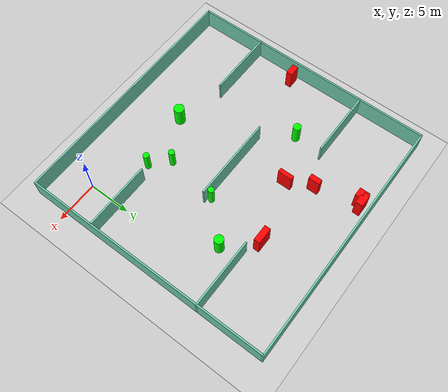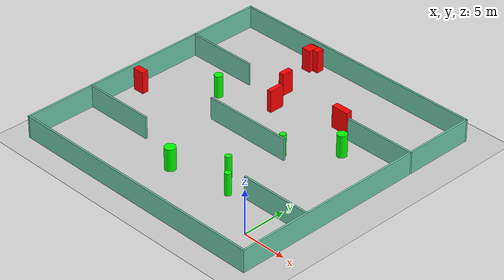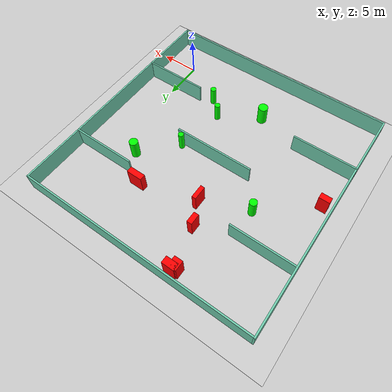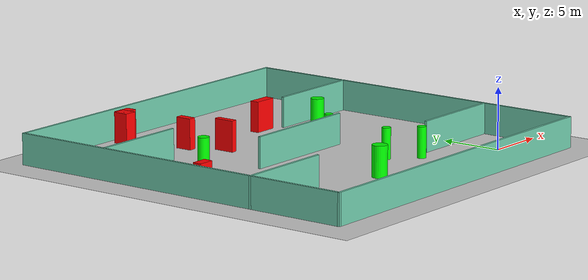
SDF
<sdf version="1.7">
 <world name="default">
  <light name="sun" type="directional">
   <pose>0 0 10 0 -0 0</pose>
   <diffuse>0.8 0.8 0.8 1</diffuse>
   <specular>0.2 0.2 0.2 1</specular>
   <attenuation>
    <range>1000</range>
    <constant>0.9</constant>
    <linear>0.01</linear>
    <quadratic>0.001</quadratic>
   </attenuation>
   <direction>-0.5 0.1 -0.9</direction>
   <spot><inner_angle>0</inner_angle><outer_angle>0</outer_angle><falloff>0</falloff></spot>
  </light>
  <model name="ground_plane">
   <static>1</static>
   <link name="link">
    <collision name="collision">
     <geometry><plane><normal>0 0 1</normal><size>100 100</size></plane></geometry>
     <surface>
      <contact><collide_bitmask>65535</collide_bitmask></contact>
      <friction><ode><mu>100</mu><mu2>50</mu2></ode></friction>
     </surface>
    </collision>
    <visual name="visual">
     <cast_shadows>0</cast_shadows>
     <geometry><plane><normal>0 0 1</normal><size>100 100</size></plane></geometry>
     <material>
      <script><uri>file://media/materials/scripts/gazebo.material</uri><name>Gazebo/Grey</name></script>
     </material>
    </visual>
   </link>
  </model>
  <gravity>0 0 -9.8</gravity>
  <magnetic_field>6e-06 2.3e-05 -4.2e-05</magnetic_field>
  <atmosphere type="adiabatic"/>
  <physics type="ode">
   <max_step_size>0.001</max_step_size>
   <real_time_factor>1</real_time_factor>
   <real_time_update_rate>1000</real_time_update_rate>
  </physics>
  <scene><ambient>0.4 0.4 0.4 1</ambient><background>0.7 0.7 0.7 1</background><shadows>1</shadows></scene>
  <spherical_coordinates>
   <surface_model>EARTH_WGS84</surface_model>
   <latitude_deg>0</latitude_deg>
   <longitude_deg>0</longitude_deg>
   <elevation>0</elevation>
   <heading_deg>0</heading_deg>
  </spherical_coordinates>
  <model name="my_base_walls">
   <link name="Wall_10">
    <collision name="Wall_10_Collision">
     <geometry><box><size>8.2 0.2 2.5</size></box></geometry>
     <pose>0 0 1.25 0 -0 0</pose>
    </collision>
    <visual name="Wall_10_Visual">
     <pose>0 0 1.25 0 -0 0</pose>
     <geometry><box><size>8.2 0.2 2.5</size></box></geometry>
     <material>
      <script><uri>file://media/materials/scripts/gazebo.material</uri><name>Gazebo/Grey</name></script>
      <ambient>0.435294 0.796078 0.67451 1</ambient>
     </material>
     <meta><layer>0</layer></meta>
    </visual>
    <pose>-11 -7 0 0 -0 0</pose>
   </link>
   <link name="Wall_12">
    <collision name="Wall_12_Collision">
     <geometry><box><size>8.2 0.2 2.5</size></box></geometry>
     <pose>0 0 1.25 0 -0 0</pose>
    </collision>
    <visual name="Wall_12_Visual">
     <pose>0 0 1.25 0 -0 0</pose>
     <geometry><box><size>8.2 0.2 2.5</size></box></geometry>
     <material>
      <script><uri>file://media/materials/scripts/gazebo.material</uri><name>Gazebo/Grey</name></script>
      <ambient>0.435294 0.796078 0.67451 1</ambient>
     </material>
     <meta><layer>0</layer></meta>
    </visual>
    <pose>-11 7 0 0 -0 0</pose>
   </link>
   <link name="Wall_14">
    <collision name="Wall_14_Collision">
     <geometry><box><size>8.2 0.2 2.5</size></box></geometry>
     <pose>0 0 1.25 0 -0 0</pose>
    </collision>
    <visual name="Wall_14_Visual">
     <pose>0 0 1.25 0 -0 0</pose>
     <geometry><box><size>8.2 0.2 2.5</size></box></geometry>
     <material>
      <script><uri>file://media/materials/scripts/gazebo.material</uri><name>Gazebo/Grey</name></script>
      <ambient>0.435294 0.796078 0.67451 1</ambient>
     </material>
     <meta><layer>0</layer></meta>
    </visual>
    <pose>11 7 0 0 -0 3.14159</pose>
   </link>
   <link name="Wall_16">
    <collision name="Wall_16_Collision">
     <geometry><box><size>10.2 0.2 2.5</size></box></geometry>
     <pose>0 0 1.25 0 -0 0</pose>
    </collision>
    <visual name="Wall_16_Visual">
     <pose>0 0 1.25 0 -0 0</pose>
     <geometry><box><size>10.2 0.2 2.5</size></box></geometry>
     <material>
      <script><uri>file://media/materials/scripts/gazebo.material</uri><name>Gazebo/Grey</name></script>
      <ambient>0.435294 0.796078 0.67451 1</ambient>
     </material>
     <meta><layer>0</layer></meta>
    </visual>
    <pose>0 0 0 0 -0 3.14159</pose>
   </link>
   <link name="Wall_2">
    <collision name="Wall_2_Collision">
     <geometry><box><size>30.2 0.2 2.5</size></box></geometry>
     <pose>0 0 1.25 0 -0 0</pose>
    </collision>
    <visual name="Wall_2_Visual">
     <pose>0 0 1.25 0 -0 0</pose>
     <geometry><box><size>30.2 0.2 2.5</size></box></geometry>
     <material>
      <script><uri>file://media/materials/scripts/gazebo.material</uri><name>Gazebo/Grey</name></script>
      <ambient>0.435294 0.796078 0.67451 1</ambient>
     </material>
     <meta><layer>0</layer></meta>
    </visual>
    <pose>0 -15 0 0 -0 3.14159</pose>
   </link>
   <link name="Wall_3">
    <collision name="Wall_3_Collision">
     <geometry><box><size>30.2 0.2 2.5</size></box></geometry>
     <pose>0 0 1.25 0 -0 0</pose>
    </collision>
    <visual name="Wall_3_Visual">
     <pose>0 0 1.25 0 -0 0</pose>
     <geometry><box><size>30.2 0.2 2.5</size></box></geometry>
     <material>
      <script><uri>file://media/materials/scripts/gazebo.material</uri><name>Gazebo/Grey</name></script>
      <ambient>0.435294 0.796078 0.67451 1</ambient>
     </material>
     <meta><layer>0</layer></meta>
    </visual>
    <pose>-15 0 0 0 -0 1.5708</pose>
   </link>
   <link name="Wall_4">
    <collision name="Wall_4_Collision">
     <geometry><box><size>30.2 0.2 2.5</size></box></geometry>
     <pose>0 0 1.25 0 -0 0</pose>
    </collision>
    <visual name="Wall_4_Visual">
     <pose>0 0 1.25 0 -0 0</pose>
     <geometry><box><size>30.2 0.2 2.5</size></box></geometry>
     <material>
      <script><uri>file://media/materials/scripts/gazebo.material</uri><name>Gazebo/Grey</name></script>
      <ambient>0.435294 0.796078 0.67451 1</ambient>
     </material>
     <meta><layer>0</layer></meta>
    </visual>
    <pose>0 15 0 0 -0 0</pose>
   </link>
   <link name="Wall_6">
    <collision name="Wall_6_Collision">
     <geometry><box><size>30.2 0.2 2.5</size></box></geometry>
     <pose>0 0 1.25 0 -0 0</pose>
    </collision>
    <visual name="Wall_6_Visual">
     <pose>0 0 1.25 0 -0 0</pose>
     <geometry><box><size>30.2 0.2 2.5</size></box></geometry>
     <material>
      <script><uri>file://media/materials/scripts/gazebo.material</uri><name>Gazebo/Grey</name></script>
      <ambient>0.435294 0.796078 0.67451 1</ambient>
     </material>
     <meta><layer>0</layer></meta>
    </visual>
    <pose>15 0 0 0 -0 1.5708</pose>
   </link>
   <link name="Wall_8">
    <collision name="Wall_8_Collision">
     <geometry><box><size>8.2 0.2 2.5</size></box></geometry>
     <pose>0 0 1.25 0 -0 0</pose>
    </collision>
    <visual name="Wall_8_Visual">
     <pose>0 0 1.25 0 -0 0</pose>
     <geometry><box><size>8.2 0.2 2.5</size></box></geometry>
     <material>
      <script><uri>file://media/materials/scripts/gazebo.material</uri><name>Gazebo/Grey</name></script>
      <ambient>0.435294 0.796078 0.67451 1</ambient>
     </material>
     <meta><layer>0</layer></meta>
    </visual>
    <pose>11 -7 0 0 -0 3.14159</pose>
   </link>
   <static>1</static>
   <pose>-11 11 0 0 -0 0</pose>
  </model>
  <model name="cylinder1">
   <static>1</static>
   <link name="link">
    <inertial>
     <mass>1</mass>
     <inertia><ixx>0.5</ixx><ixy>0</ixy><ixz>0</ixz><iyy>0.5</iyy><iyz>0</iyz><izz>1</izz></inertia>
    </inertial>
    <collision name="collision">
     <geometry><cylinder><radius>0.6066984467377339</radius><length>2.5</length></cylinder></geometry>
    </collision>
    <visual name="visual">
     <geometry><cylinder><radius>0.6066984467377339</radius><length>2.5</length></cylinder></geometry>
     <material>
      <ambient>0 1 0 1</ambient>
      <diffuse>0 1 0 1</diffuse>
      <specular>0.1 0.1 0.1 1</specular>
      <emissive>0 0 0 0</emissive>
     </material>
    </visual>
   </link>
   <pose>-12.551068063284294 2.2390533879514685 1.25 0 0 0</pose>
  </model>
  <model name="cylinder2">
   <static>1</static>
   <link name="link">
    <inertial>
     <mass>1</mass>
     <inertia><ixx>0.5</ixx><ixy>0</ixy><ixz>0</ixz><iyy>0.5</iyy><iyz>0</iyz><izz>1</izz></inertia>
    </inertial>
    <collision name="collision">
     <geometry><cylinder><radius>0.5428232436124012</radius><length>2.5</length></cylinder></geometry>
    </collision>
    <visual name="visual">
     <geometry><cylinder><radius>0.5428232436124012</radius><length>2.5</length></cylinder></geometry>
     <material>
      <ambient>0 1 0 1</ambient>
      <diffuse>0 1 0 1</diffuse>
      <specular>0.1 0.1 0.1 1</specular>
      <emissive>0 0 0 0</emissive>
     </material>
    </visual>
   </link>
   <pose>-2.6661952382332785 15.607269604962887 1.25 0 0 0</pose>
  </model>
  <model name="cylinder3">
   <static>1</static>
   <link name="link">
    <inertial>
     <mass>1</mass>
     <inertia><ixx>0.5</ixx><ixy>0</ixy><ixz>0</ixz><iyy>0.5</iyy><iyz>0</iyz><izz>1</izz></inertia>
    </inertial>
    <collision name="collision">
     <geometry><cylinder><radius>0.3607577435794134</radius><length>2.5</length></cylinder></geometry>
    </collision>
    <visual name="visual">
     <geometry><cylinder><radius>0.3607577435794134</radius><length>2.5</length></cylinder></geometry>
     <material>
      <ambient>0 1 0 1</ambient>
      <diffuse>0 1 0 1</diffuse>
      <specular>0.1 0.1 0.1 1</specular>
      <emissive>0 0 0 0</emissive>
     </material>
    </visual>
   </link>
   <pose>-5.648781818820932 3.2565214986958964 1.25 0 0 0</pose>
  </model>
  <model name="cylinder4">
   <static>1</static>
   <link name="link">
    <inertial>
     <mass>1</mass>
     <inertia><ixx>0.5</ixx><ixy>0</ixy><ixz>0</ixz><iyy>0.5</iyy><iyz>0</iyz><izz>1</izz></inertia>
    </inertial>
    <collision name="collision">
     <geometry><cylinder><radius>0.34647683706648624</radius><length>2.5</length></cylinder></geometry>
    </collision>
    <visual name="visual">
     <geometry><cylinder><radius>0.34647683706648624</radius><length>2.5</length></cylinder></geometry>
     <material>
      <ambient>0 1 0 1</ambient>
      <diffuse>0 1 0 1</diffuse>
      <specular>0.1 0.1 0.1 1</specular>
      <emissive>0 0 0 0</emissive>
     </material>
    </visual>
   </link>
   <pose>-6.62321619667545 11.4958472641072 1.25 0 0 0</pose>
  </model>
  <model name="cylinder5">
   <static>1</static>
   <link name="link">
    <inertial>
     <mass>1</mass>
     <inertia><ixx>0.5</ixx><ixy>0</ixy><ixz>0</ixz><iyy>0.5</iyy><iyz>0</iyz><izz>1</izz></inertia>
    </inertial>
    <collision name="collision">
     <geometry><cylinder><radius>0.3521196654844516</radius><length>2.5</length></cylinder></geometry>
    </collision>
    <visual name="visual">
     <geometry><cylinder><radius>0.3521196654844516</radius><length>2.5</length></cylinder></geometry>
     <material>
      <ambient>0 1 0 1</ambient>
      <diffuse>0 1 0 1</diffuse>
      <specular>0.1 0.1 0.1 1</specular>
      <emissive>0 0 0 0</emissive>
     </material>
    </visual>
   </link>
   <pose>-7.620520185418982 5.205628493281722 1.25 0 0 0</pose>
  </model>
  <model name="cylinder6">
   <static>1</static>
   <link name="link">
    <inertial>
     <mass>1</mass>
     <inertia><ixx>0.5</ixx><ixy>0</ixy><ixz>0</ixz><iyy>0.5</iyy><iyz>0</iyz><izz>1</izz></inertia>
    </inertial>
    <collision name="collision">
     <geometry><cylinder><radius>0.4662894602284323</radius><length>2.5</length></cylinder></geometry>
    </collision>
    <visual name="visual">
     <geometry><cylinder><radius>0.4662894602284323</radius><length>2.5</length></cylinder></geometry>
     <material>
      <ambient>0 1 0 1</ambient>
      <diffuse>0 1 0 1</diffuse>
      <specular>0.1 0.1 0.1 1</specular>
      <emissive>0 0 0 0</emissive>
     </material>
    </visual>
   </link>
   <pose>-18.626178419693296 14.360435832054552 1.25 0 0 0</pose>
  </model>
  <model name="box1">
   <static>1</static>
   <link name="link">
    <inertial>
     <mass>1</mass>
     <inertia><ixx>0.083</ixx><ixy>0</ixy><ixz>0</ixz><iyy>0.083</iyy><iyz>0</iyz><izz>0.083</izz></inertia>
    </inertial>
    <collision name="collision">
     <geometry><box><size>0.6298444434961903 1.3333094076364942 2.5</size></box></geometry>
    </collision>
    <visual name="visual">
     <geometry><box><size>0.6298444434961903 1.3333094076364942 2.5</size></box></geometry>
     <material>
      <ambient>1 0 0 1</ambient>
      <diffuse>1 0 0 1</diffuse>
      <specular>0.1 0.1 0.1 1</specular>
      <emissive>0 0 0 0</emissive>
     </material>
    </visual>
    <sensor name="my_contact" type="contact">
     <contact><collision>box_collision</collision><topic>__default_topic__</topic></contact>
    </sensor>
   </link>
   <pose>-14.356928147300948 19.6264399441763 1.25 0 0 0</pose>
  </model>
  <model name="box2">
   <static>1</static>
   <link name="link">
    <inertial>
     <mass>1</mass>
     <inertia><ixx>0.083</ixx><ixy>0</ixy><ixz>0</ixz><iyy>0.083</iyy><iyz>0</iyz><izz>0.083</izz></inertia>
    </inertial>
    <collision name="collision">
     <geometry><box><size>1.0535052790223622 1.2210687863782552 2.5</size></box></geometry>
    </collision>
    <visual name="visual">
     <geometry><box><size>1.0535052790223622 1.2210687863782552 2.5</size></box></geometry>
     <material>
      <ambient>1 0 0 1</ambient>
      <diffuse>1 0 0 1</diffuse>
      <specular>0.1 0.1 0.1 1</specular>
      <emissive>0 0 0 0</emissive>
     </material>
    </visual>
    <sensor name="my_contact" type="contact">
     <contact><collision>box_collision</collision><topic>__default_topic__</topic></contact>
    </sensor>
   </link>
   <pose>-15.845111583008805 24.601313898461022 1.25 0 0 0</pose>
  </model>
  <model name="box3">
   <static>1</static>
   <link name="link">
    <inertial>
     <mass>1</mass>
     <inertia><ixx>0.083</ixx><ixy>0</ixy><ixz>0</ixz><iyy>0.083</iyy><iyz>0</iyz><izz>0.083</izz></inertia>
    </inertial>
    <collision name="collision">
     <geometry><box><size>1.9647928746371077 0.7315550358083 2.5</size></box></geometry>
    </collision>
    <visual name="visual">
     <geometry><box><size>1.9647928746371077 0.7315550358083 2.5</size></box></geometry>
     <material>
      <ambient>1 0 0 1</ambient>
      <diffuse>1 0 0 1</diffuse>
      <specular>0.1 0.1 0.1 1</specular>
      <emissive>0 0 0 0</emissive>
     </material>
    </visual>
    <sensor name="my_contact" type="contact">
     <contact><collision>box_collision</collision><topic>__default_topic__</topic></contact>
    </sensor>
   </link>
   <pose>-5.775396782915255 18.802172044576636 1.25 0 0 0</pose>
  </model>
  <model name="box4">
   <static>1</static>
   <link name="link">
    <inertial>
     <mass>1</mass>
     <inertia><ixx>0.083</ixx><ixy>0</ixy><ixz>0</ixz><iyy>0.083</iyy><iyz>0</iyz><izz>0.083</izz></inertia>
    </inertial>
    <collision name="collision">
     <geometry><box><size>0.511324120411297 1.7045812898255974 2.5</size></box></geometry>
    </collision>
    <visual name="visual">
     <geometry><box><size>0.511324120411297 1.7045812898255974 2.5</size></box></geometry>
     <material>
      <ambient>1 0 0 1</ambient>
      <diffuse>1 0 0 1</diffuse>
      <specular>0.1 0.1 0.1 1</specular>
      <emissive>0 0 0 0</emissive>
     </material>
    </visual>
    <sensor name="my_contact" type="contact">
     <contact><collision>box_collision</collision><topic>__default_topic__</topic></contact>
    </sensor>
   </link>
   <pose>-12.979052899017685 16.753363773884512 1.25 0 0 0</pose>
  </model>
  <model name="box5">
   <static>1</static>
   <link name="link">
    <inertial>
     <mass>1</mass>
     <inertia><ixx>0.083</ixx><ixy>0</ixy><ixz>0</ixz><iyy>0.083</iyy><iyz>0</iyz><izz>0.083</izz></inertia>
    </inertial>
    <collision name="collision">
     <geometry><box><size>1.3196310790959989 0.7373863673915138 2.5</size></box></geometry>
    </collision>
    <visual name="visual">
     <geometry><box><size>1.3196310790959989 0.7373863673915138 2.5</size></box></geometry>
     <material>
      <ambient>1 0 0 1</ambient>
      <diffuse>1 0 0 1</diffuse>
      <specular>0.1 0.1 0.1 1</specular>
      <emissive>0 0 0 0</emissive>
     </material>
    </visual>
    <sensor name="my_contact" type="contact">
     <contact><collision>box_collision</collision><topic>__default_topic__</topic></contact>
    </sensor>
   </link>
   <pose>-24.809954238429267 9.433501109696758 1.25 0 0 0</pose>
  </model>
  <model name="box6">
   <static>1</static>
   <link name="link">
    <inertial>
     <mass>1</mass>
     <inertia><ixx>0.083</ixx><ixy>0</ixy><ixz>0</ixz><iyy>0.083</iyy><iyz>0</iyz><izz>0.083</izz></inertia>
    </inertial>
    <collision name="collision">
     <geometry><box><size>1.5334092826841126 0.8557586194252884 2.5</size></box></geometry>
    </collision>
    <visual name="visual">
     <geometry><box><size>1.5334092826841126 0.8557586194252884 2.5</size></box></geometry>
     <material>
      <ambient>1 0 0 1</ambient>
      <diffuse>1 0 0 1</diffuse>
      <specular>0.1 0.1 0.1 1</specular>
      <emissive>0 0 0 0</emissive>
     </material>
    </visual>
    <sensor name="my_contact" type="contact">
     <contact><collision>box_collision</collision><topic>__default_topic__</topic></contact>
    </sensor>
   </link>
   <pose>-15.411049580678327 24.9020163483295 1.25 0 0 0</pose>
  </model>
 </world>
</sdf>
